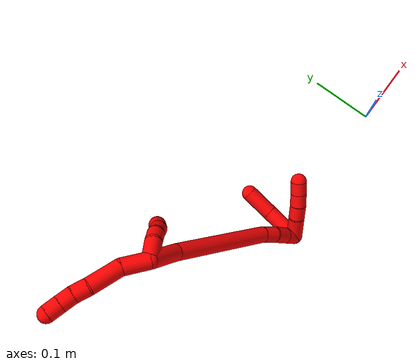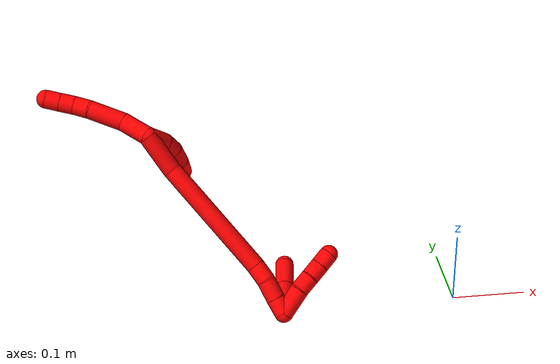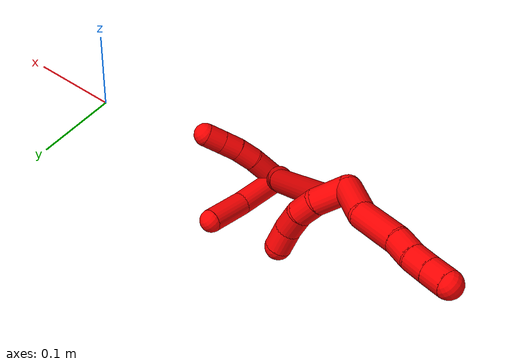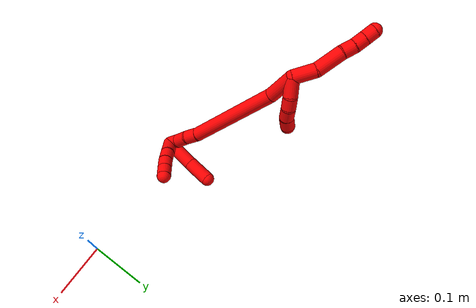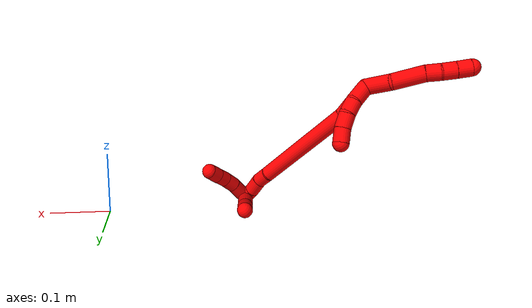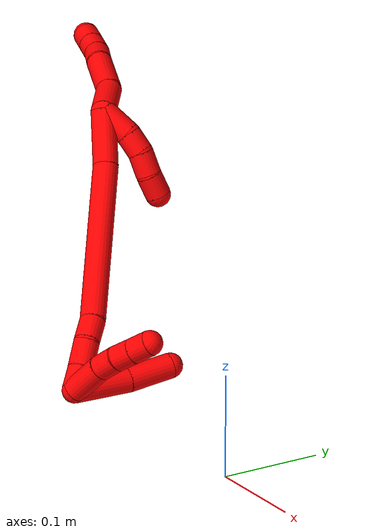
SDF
<sdf version="1.7">
 <world name="default">
  <model name="2">
   <static>0</static>
   <link name="2">
    <collision name="collision-cylinder-e_1_2_8">
     <pose>-9.7e-05 -0.019945 -0.002004 1.67094 -0.00486 -0.005373</pose>
     <geometry><cylinder><radius>0.0125</radius><length>0.040092</length></cylinder></geometry>
     <surface>
      <friction><ode><mu>1.16</mu><mu2>1.16</mu2><slip1>0</slip1><slip2>0</slip2></ode></friction>
      <contact><ode><kp>1e+06</kp><kd>1</kd><max_vel>0</max_vel><min_depth>0.001</min_depth></ode></contact>
     </surface>
    </collision>
    <visual name="visual-cylinder-e_1_2_8">
     <pose>-9.7e-05 -0.019945 -0.002004 1.67094 -0.00486 -0.005373</pose>
     <geometry><cylinder><radius>0.0125</radius><length>0.040092</length></cylinder></geometry>
     <material><ambient>1 0 0 1</ambient></material>
    </visual>
    <collision name="collision-cylinder-e_2_8_9">
     <pose>0.006709 -0.062251 -0.009934 1.82985 0.290047 0.375129</pose>
     <geometry><cylinder><radius>0.0125</radius><length>0.048281</length></cylinder></geometry>
     <surface>
      <friction><ode><mu>1.16</mu><mu2>1.16</mu2><slip1>0</slip1><slip2>0</slip2></ode></friction>
      <contact><ode><kp>1e+06</kp><kd>1</kd><max_vel>0</max_vel><min_depth>0.001</min_depth></ode></contact>
     </surface>
    </collision>
    <visual name="visual-cylinder-e_2_8_9">
     <pose>0.006709 -0.062251 -0.009934 1.82985 0.290047 0.375129</pose>
     <geometry><cylinder><radius>0.0125</radius><length>0.048281</length></cylinder></geometry>
     <material><ambient>1 0 0 1</ambient></material>
    </visual>
    <collision name="collision-cylinder-e_3_9_10">
     <pose>0.014912 -0.094696 -0.019395 1.90802 0.120933 0.170346</pose>
     <geometry><cylinder><radius>0.0125</radius><length>0.021531</length></cylinder></geometry>
     <surface>
      <friction><ode><mu>1.16</mu><mu2>1.16</mu2><slip1>0</slip1><slip2>0</slip2></ode></friction>
      <contact><ode><kp>1e+06</kp><kd>1</kd><max_vel>0</max_vel><min_depth>0.001</min_depth></ode></contact>
     </surface>
    </collision>
    <visual name="visual-cylinder-e_3_9_10">
     <pose>0.014912 -0.094696 -0.019395 1.90802 0.120933 0.170346</pose>
     <geometry><cylinder><radius>0.0125</radius><length>0.021531</length></cylinder></geometry>
     <material><ambient>1 0 0 1</ambient></material>
    </visual>
    <collision name="collision-cylinder-e_4_10_11">
     <pose>0.018845 -0.113642 -0.026755 1.97818 0.266491 0.402147</pose>
     <geometry><cylinder><radius>0.0125</radius><length>0.020006</length></cylinder></geometry>
     <surface>
      <friction><ode><mu>1.16</mu><mu2>1.16</mu2><slip1>0</slip1><slip2>0</slip2></ode></friction>
      <contact><ode><kp>1e+06</kp><kd>1</kd><max_vel>0</max_vel><min_depth>0.001</min_depth></ode></contact>
     </surface>
    </collision>
    <visual name="visual-cylinder-e_4_10_11">
     <pose>0.018845 -0.113642 -0.026755 1.97818 0.266491 0.402147</pose>
     <geometry><cylinder><radius>0.0125</radius><length>0.020006</length></cylinder></geometry>
     <material><ambient>1 0 0 1</ambient></material>
    </visual>
    <collision name="collision-cylinder-e_5_11_6">
     <pose>0.024376 -0.131378 -0.034283 1.96625 0.292504 0.435225</pose>
     <geometry><cylinder><radius>0.0125</radius><length>0.020089</length></cylinder></geometry>
     <surface>
      <friction><ode><mu>1.16</mu><mu2>1.16</mu2><slip1>0</slip1><slip2>0</slip2></ode></friction>
      <contact><ode><kp>1e+06</kp><kd>1</kd><max_vel>0</max_vel><min_depth>0.001</min_depth></ode></contact>
     </surface>
    </collision>
    <visual name="visual-cylinder-e_5_11_6">
     <pose>0.024376 -0.131378 -0.034283 1.96625 0.292504 0.435225</pose>
     <geometry><cylinder><radius>0.0125</radius><length>0.020089</length></cylinder></geometry>
     <material><ambient>1 0 0 1</ambient></material>
    </visual>
    <collision name="collision-cylinder-e_1_2_12">
     <pose>-0.015254 0.006025 0.001389 -1.34414 -1.18571 0.984087</pose>
     <geometry><cylinder><radius>0.0125</radius><length>0.03292</length></cylinder></geometry>
     <surface>
      <friction><ode><mu>1.16</mu><mu2>1.16</mu2><slip1>0</slip1><slip2>0</slip2></ode></friction>
      <contact><ode><kp>1e+06</kp><kd>1</kd><max_vel>0</max_vel><min_depth>0.001</min_depth></ode></contact>
     </surface>
    </collision>
    <visual name="visual-cylinder-e_1_2_12">
     <pose>-0.015254 0.006025 0.001389 -1.34414 -1.18571 0.984087</pose>
     <geometry><cylinder><radius>0.0125</radius><length>0.03292</length></cylinder></geometry>
     <material><ambient>1 0 0 1</ambient></material>
    </visual>
    <collision name="collision-cylinder-e_2_12_13">
     <pose>-0.040067 0.01636 0.000871 -1.98741 -1.11261 1.52492</pose>
     <geometry><cylinder><radius>0.0125</radius><length>0.021314</length></cylinder></geometry>
     <surface>
      <friction><ode><mu>1.16</mu><mu2>1.16</mu2><slip1>0</slip1><slip2>0</slip2></ode></friction>
      <contact><ode><kp>1e+06</kp><kd>1</kd><max_vel>0</max_vel><min_depth>0.001</min_depth></ode></contact>
     </surface>
    </collision>
    <visual name="visual-cylinder-e_2_12_13">
     <pose>-0.040067 0.01636 0.000871 -1.98741 -1.11261 1.52492</pose>
     <geometry><cylinder><radius>0.0125</radius><length>0.021314</length></cylinder></geometry>
     <material><ambient>1 0 0 1</ambient></material>
    </visual>
    <collision name="collision-cylinder-e_3_13_14">
     <pose>-0.058961 0.025286 -0.006088 -2.40129 -0.938333 1.83491</pose>
     <geometry><cylinder><radius>0.0125</radius><length>0.02315</length></cylinder></geometry>
     <surface>
      <friction><ode><mu>1.16</mu><mu2>1.16</mu2><slip1>0</slip1><slip2>0</slip2></ode></friction>
      <contact><ode><kp>1e+06</kp><kd>1</kd><max_vel>0</max_vel><min_depth>0.001</min_depth></ode></contact>
     </surface>
    </collision>
    <visual name="visual-cylinder-e_3_13_14">
     <pose>-0.058961 0.025286 -0.006088 -2.40129 -0.938333 1.83491</pose>
     <geometry><cylinder><radius>0.0125</radius><length>0.02315</length></cylinder></geometry>
     <material><ambient>1 0 0 1</ambient></material>
    </visual>
    <collision name="collision-cylinder-e_4_14_5">
     <pose>-0.078035 0.032022 -0.016482 -2.76373 -1.03756 2.49527</pose>
     <geometry><cylinder><radius>0.0125</radius><length>0.022616</length></cylinder></geometry>
     <surface>
      <friction><ode><mu>1.16</mu><mu2>1.16</mu2><slip1>0</slip1><slip2>0</slip2></ode></friction>
      <contact><ode><kp>1e+06</kp><kd>1</kd><max_vel>0</max_vel><min_depth>0.001</min_depth></ode></contact>
     </surface>
    </collision>
    <visual name="visual-cylinder-e_4_14_5">
     <pose>-0.078035 0.032022 -0.016482 -2.76373 -1.03756 2.49527</pose>
     <geometry><cylinder><radius>0.0125</radius><length>0.022616</length></cylinder></geometry>
     <material><ambient>1 0 0 1</ambient></material>
    </visual>
    <collision name="collision-cylinder-e_1_2_15">
     <pose>-0.013279 0.022299 -0.01025 -2.00167 -0.495946 0.752439</pose>
     <geometry><cylinder><radius>0.0125</radius><length>0.055808</length></cylinder></geometry>
     <surface>
      <friction><ode><mu>1.16</mu><mu2>1.16</mu2><slip1>0</slip1><slip2>0</slip2></ode></friction>
      <contact><ode><kp>1e+06</kp><kd>1</kd><max_vel>0</max_vel><min_depth>0.001</min_depth></ode></contact>
     </surface>
    </collision>
    <visual name="visual-cylinder-e_1_2_15">
     <pose>-0.013279 0.022299 -0.01025 -2.00167 -0.495946 0.752439</pose>
     <geometry><cylinder><radius>0.0125</radius><length>0.055808</length></cylinder></geometry>
     <material><ambient>1 0 0 1</ambient></material>
    </visual>
    <collision name="collision-cylinder-e_2_15_16">
     <pose>-0.051491 0.122843 -0.042236 -1.84175 -0.2979 0.389844</pose>
     <geometry><cylinder><radius>0.0125</radius><length>0.169898</length></cylinder></geometry>
     <surface>
      <friction><ode><mu>1.16</mu><mu2>1.16</mu2><slip1>0</slip1><slip2>0</slip2></ode></friction>
      <contact><ode><kp>1e+06</kp><kd>1</kd><max_vel>0</max_vel><min_depth>0.001</min_depth></ode></contact>
     </surface>
    </collision>
    <visual name="visual-cylinder-e_2_15_16">
     <pose>-0.051491 0.122843 -0.042236 -1.84175 -0.2979 0.389844</pose>
     <geometry><cylinder><radius>0.0125</radius><length>0.169898</length></cylinder></geometry>
     <material><ambient>1 0 0 1</ambient></material>
    </visual>
    <collision name="collision-cylinder-e_3_16_17">
     <pose>-0.078076 0.212364 -0.067836 -1.90096 -0.137639 0.192377</pose>
     <geometry><cylinder><radius>0.0125</radius><length>0.024067</length></cylinder></geometry>
     <surface>
      <friction><ode><mu>1.16</mu><mu2>1.16</mu2><slip1>0</slip1><slip2>0</slip2></ode></friction>
      <contact><ode><kp>1e+06</kp><kd>1</kd><max_vel>0</max_vel><min_depth>0.001</min_depth></ode></contact>
     </surface>
    </collision>
    <visual name="visual-cylinder-e_3_16_17">
     <pose>-0.078076 0.212364 -0.067836 -1.90096 -0.137639 0.192377</pose>
     <geometry><cylinder><radius>0.0125</radius><length>0.024067</length></cylinder></geometry>
     <material><ambient>1 0 0 1</ambient></material>
    </visual>
    <collision name="collision-cylinder-e_4_17_18">
     <pose>-0.08322 0.235111 -0.078212 -2.08707 -0.258859 0.439856</pose>
     <geometry><cylinder><radius>0.0125</radius><length>0.027292</length></cylinder></geometry>
     <surface>
      <friction><ode><mu>1.16</mu><mu2>1.16</mu2><slip1>0</slip1><slip2>0</slip2></ode></friction>
      <contact><ode><kp>1e+06</kp><kd>1</kd><max_vel>0</max_vel><min_depth>0.001</min_depth></ode></contact>
     </surface>
    </collision>
    <visual name="visual-cylinder-e_4_17_18">
     <pose>-0.08322 0.235111 -0.078212 -2.08707 -0.258859 0.439856</pose>
     <geometry><cylinder><radius>0.0125</radius><length>0.027292</length></cylinder></geometry>
     <material><ambient>1 0 0 1</ambient></material>
    </visual>
    <collision name="collision-cylinder-e_5_18_1">
     <pose>-0.08895 0.256692 -0.089655 -2.02463 -0.196391 0.312748</pose>
     <geometry><cylinder><radius>0.0125</radius><length>0.022935</length></cylinder></geometry>
     <surface>
      <friction><ode><mu>1.16</mu><mu2>1.16</mu2><slip1>0</slip1><slip2>0</slip2></ode></friction>
      <contact><ode><kp>1e+06</kp><kd>1</kd><max_vel>0</max_vel><min_depth>0.001</min_depth></ode></contact>
     </surface>
    </collision>
    <visual name="visual-cylinder-e_5_18_1">
     <pose>-0.08895 0.256692 -0.089655 -2.02463 -0.196391 0.312748</pose>
     <geometry><cylinder><radius>0.0125</radius><length>0.022935</length></cylinder></geometry>
     <material><ambient>1 0 0 1</ambient></material>
    </visual>
    <collision name="collision-cylinder-e_1_1_19">
     <pose>-0.092841 0.265963 -0.075521 0.043883 -0.086397 -0.001897</pose>
     <geometry><cylinder><radius>0.0125</radius><length>0.038308</length></cylinder></geometry>
     <surface>
      <friction><ode><mu>1.16</mu><mu2>1.16</mu2><slip1>0</slip1><slip2>0</slip2></ode></friction>
      <contact><ode><kp>1e+06</kp><kd>1</kd><max_vel>0</max_vel><min_depth>0.001</min_depth></ode></contact>
     </surface>
    </collision>
    <visual name="visual-cylinder-e_1_1_19">
     <pose>-0.092841 0.265963 -0.075521 0.043883 -0.086397 -0.001897</pose>
     <geometry><cylinder><radius>0.0125</radius><length>0.038308</length></cylinder></geometry>
     <material><ambient>1 0 0 1</ambient></material>
    </visual>
    <collision name="collision-cylinder-e_2_19_20">
     <pose>-0.096857 0.265551 -0.045907 -0.040233 -0.220186 0.004448</pose>
     <geometry><cylinder><radius>0.0125</radius><length>0.021639</length></cylinder></geometry>
     <surface>
      <friction><ode><mu>1.16</mu><mu2>1.16</mu2><slip1>0</slip1><slip2>0</slip2></ode></friction>
      <contact><ode><kp>1e+06</kp><kd>1</kd><max_vel>0</max_vel><min_depth>0.001</min_depth></ode></contact>
     </surface>
    </collision>
    <visual name="visual-cylinder-e_2_19_20">
     <pose>-0.096857 0.265551 -0.045907 -0.040233 -0.220186 0.004448</pose>
     <geometry><cylinder><radius>0.0125</radius><length>0.021639</length></cylinder></geometry>
     <material><ambient>1 0 0 1</ambient></material>
    </visual>
    <collision name="collision-cylinder-e_3_20_21">
     <pose>-0.102554 0.26597 -0.025906 0.000574 -0.339151 -9.8e-05</pose>
     <geometry><cylinder><radius>0.0125</radius><length>0.020043</length></cylinder></geometry>
     <surface>
      <friction><ode><mu>1.16</mu><mu2>1.16</mu2><slip1>0</slip1><slip2>0</slip2></ode></friction>
      <contact><ode><kp>1e+06</kp><kd>1</kd><max_vel>0</max_vel><min_depth>0.001</min_depth></ode></contact>
     </surface>
    </collision>
    <visual name="visual-cylinder-e_3_20_21">
     <pose>-0.102554 0.26597 -0.025906 0.000574 -0.339151 -9.8e-05</pose>
     <geometry><cylinder><radius>0.0125</radius><length>0.020043</length></cylinder></geometry>
     <material><ambient>1 0 0 1</ambient></material>
    </visual>
    <collision name="collision-cylinder-e_4_21_4">
     <pose>-0.109214 0.265805 -0.007021 0.016878 -0.338924 -0.002888</pose>
     <geometry><cylinder><radius>0.0125</radius><length>0.020009</length></cylinder></geometry>
     <surface>
      <friction><ode><mu>1.16</mu><mu2>1.16</mu2><slip1>0</slip1><slip2>0</slip2></ode></friction>
      <contact><ode><kp>1e+06</kp><kd>1</kd><max_vel>0</max_vel><min_depth>0.001</min_depth></ode></contact>
     </surface>
    </collision>
    <visual name="visual-cylinder-e_4_21_4">
     <pose>-0.109214 0.265805 -0.007021 0.016878 -0.338924 -0.002888</pose>
     <geometry><cylinder><radius>0.0125</radius><length>0.020009</length></cylinder></geometry>
     <material><ambient>1 0 0 1</ambient></material>
    </visual>
    <collision name="collision-cylinder-e_1_1_22">
     <pose>-0.111579 0.251473 -0.083829 0.958881 -0.827948 -0.449145</pose>
     <geometry><cylinder><radius>0.0125</radius><length>0.055368</length></cylinder></geometry>
     <surface>
      <friction><ode><mu>1.16</mu><mu2>1.16</mu2><slip1>0</slip1><slip2>0</slip2></ode></friction>
      <contact><ode><kp>1e+06</kp><kd>1</kd><max_vel>0</max_vel><min_depth>0.001</min_depth></ode></contact>
     </surface>
    </collision>
    <visual name="visual-cylinder-e_1_1_22">
     <pose>-0.111579 0.251473 -0.083829 0.958881 -0.827948 -0.449145</pose>
     <geometry><cylinder><radius>0.0125</radius><length>0.055368</length></cylinder></geometry>
     <material><ambient>1 0 0 1</ambient></material>
    </visual>
    <collision name="collision-cylinder-e_2_22_3">
     <pose>-0.146518 0.222839 -0.06262 0.904902 -0.710162 -0.356646</pose>
     <geometry><cylinder><radius>0.0125</radius><length>0.044632</length></cylinder></geometry>
     <surface>
      <friction><ode><mu>1.16</mu><mu2>1.16</mu2><slip1>0</slip1><slip2>0</slip2></ode></friction>
      <contact><ode><kp>1e+06</kp><kd>1</kd><max_vel>0</max_vel><min_depth>0.001</min_depth></ode></contact>
     </surface>
    </collision>
    <visual name="visual-cylinder-e_2_22_3">
     <pose>-0.146518 0.222839 -0.06262 0.904902 -0.710162 -0.356646</pose>
     <geometry><cylinder><radius>0.0125</radius><length>0.044632</length></cylinder></geometry>
     <material><ambient>1 0 0 1</ambient></material>
    </visual>
    <collision name="collision-sphere-3">
     <pose>-0.161067 0.209533 -0.052166 0 -0 0</pose>
     <geometry><sphere><radius>0.0125</radius></sphere></geometry>
     <surface>
      <friction><ode><mu>1.16</mu><mu2>1.16</mu2><slip1>0</slip1><slip2>0</slip2></ode></friction>
      <contact><ode><kp>1e+06</kp><kd>1</kd><max_vel>0</max_vel><min_depth>0.001</min_depth></ode></contact>
     </surface>
    </collision>
    <visual name="visual-sphere-3">
     <pose>-0.161067 0.209533 -0.052166 0 -0 0</pose>
     <geometry><sphere><radius>0.0125</radius></sphere></geometry>
     <material><ambient>1 0 0 1</ambient></material>
    </visual>
    <collision name="collision-sphere-22">
     <pose>-0.131969 0.236145 -0.073073 0 -0 0</pose>
     <geometry><sphere><radius>0.0125</radius></sphere></geometry>
     <surface>
      <friction><ode><mu>1.16</mu><mu2>1.16</mu2><slip1>0</slip1><slip2>0</slip2></ode></friction>
      <contact><ode><kp>1e+06</kp><kd>1</kd><max_vel>0</max_vel><min_depth>0.001</min_depth></ode></contact>
     </surface>
    </collision>
    <visual name="visual-sphere-22">
     <pose>-0.131969 0.236145 -0.073073 0 -0 0</pose>
     <geometry><sphere><radius>0.0125</radius></sphere></geometry>
     <material><ambient>1 0 0 1</ambient></material>
    </visual>
    <collision name="collision-sphere-4">
     <pose>-0.11254 0.265646 0.002412 0 -0 0</pose>
     <geometry><sphere><radius>0.0125</radius></sphere></geometry>
     <surface>
      <friction><ode><mu>1.16</mu><mu2>1.16</mu2><slip1>0</slip1><slip2>0</slip2></ode></friction>
      <contact><ode><kp>1e+06</kp><kd>1</kd><max_vel>0</max_vel><min_depth>0.001</min_depth></ode></contact>
     </surface>
    </collision>
    <visual name="visual-sphere-4">
     <pose>-0.11254 0.265646 0.002412 0 -0 0</pose>
     <geometry><sphere><radius>0.0125</radius></sphere></geometry>
     <material><ambient>1 0 0 1</ambient></material>
    </visual>
    <collision name="collision-sphere-21">
     <pose>-0.105888 0.265964 -0.016455 0 -0 0</pose>
     <geometry><sphere><radius>0.0125</radius></sphere></geometry>
     <surface>
      <friction><ode><mu>1.16</mu><mu2>1.16</mu2><slip1>0</slip1><slip2>0</slip2></ode></friction>
      <contact><ode><kp>1e+06</kp><kd>1</kd><max_vel>0</max_vel><min_depth>0.001</min_depth></ode></contact>
     </surface>
    </collision>
    <visual name="visual-sphere-21">
     <pose>-0.105888 0.265964 -0.016455 0 -0 0</pose>
     <geometry><sphere><radius>0.0125</radius></sphere></geometry>
     <material><ambient>1 0 0 1</ambient></material>
    </visual>
    <collision name="collision-sphere-20">
     <pose>-0.09922 0.265975 -0.035357 0 -0 0</pose>
     <geometry><sphere><radius>0.0125</radius></sphere></geometry>
     <surface>
      <friction><ode><mu>1.16</mu><mu2>1.16</mu2><slip1>0</slip1><slip2>0</slip2></ode></friction>
      <contact><ode><kp>1e+06</kp><kd>1</kd><max_vel>0</max_vel><min_depth>0.001</min_depth></ode></contact>
     </surface>
    </collision>
    <visual name="visual-sphere-20">
     <pose>-0.09922 0.265975 -0.035357 0 -0 0</pose>
     <geometry><sphere><radius>0.0125</radius></sphere></geometry>
     <material><ambient>1 0 0 1</ambient></material>
    </visual>
    <collision name="collision-sphere-6">
     <pose>0.027272 -0.140254 -0.037989 0 -0 0</pose>
     <geometry><sphere><radius>0.0125</radius></sphere></geometry>
     <surface>
      <friction><ode><mu>1.16</mu><mu2>1.16</mu2><slip1>0</slip1><slip2>0</slip2></ode></friction>
      <contact><ode><kp>1e+06</kp><kd>1</kd><max_vel>0</max_vel><min_depth>0.001</min_depth></ode></contact>
     </surface>
    </collision>
    <visual name="visual-sphere-6">
     <pose>0.027272 -0.140254 -0.037989 0 -0 0</pose>
     <geometry><sphere><radius>0.0125</radius></sphere></geometry>
     <material><ambient>1 0 0 1</ambient></material>
    </visual>
    <collision name="collision-sphere-11">
     <pose>0.021479 -0.122502 -0.030578 0 -0 0</pose>
     <geometry><sphere><radius>0.0125</radius></sphere></geometry>
     <surface>
      <friction><ode><mu>1.16</mu><mu2>1.16</mu2><slip1>0</slip1><slip2>0</slip2></ode></friction>
      <contact><ode><kp>1e+06</kp><kd>1</kd><max_vel>0</max_vel><min_depth>0.001</min_depth></ode></contact>
     </surface>
    </collision>
    <visual name="visual-sphere-11">
     <pose>0.021479 -0.122502 -0.030578 0 -0 0</pose>
     <geometry><sphere><radius>0.0125</radius></sphere></geometry>
     <material><ambient>1 0 0 1</ambient></material>
    </visual>
    <collision name="collision-sphere-10">
     <pose>0.016211 -0.104781 -0.022931 0 -0 0</pose>
     <geometry><sphere><radius>0.0125</radius></sphere></geometry>
     <surface>
      <friction><ode><mu>1.16</mu><mu2>1.16</mu2><slip1>0</slip1><slip2>0</slip2></ode></friction>
      <contact><ode><kp>1e+06</kp><kd>1</kd><max_vel>0</max_vel><min_depth>0.001</min_depth></ode></contact>
     </surface>
    </collision>
    <visual name="visual-sphere-10">
     <pose>0.016211 -0.104781 -0.022931 0 -0 0</pose>
     <geometry><sphere><radius>0.0125</radius></sphere></geometry>
     <material><ambient>1 0 0 1</ambient></material>
    </visual>
    <collision name="collision-sphere-9">
     <pose>0.013613 -0.084611 -0.015859 0 -0 0</pose>
     <geometry><sphere><radius>0.0125</radius></sphere></geometry>
     <surface>
      <friction><ode><mu>1.16</mu><mu2>1.16</mu2><slip1>0</slip1><slip2>0</slip2></ode></friction>
      <contact><ode><kp>1e+06</kp><kd>1</kd><max_vel>0</max_vel><min_depth>0.001</min_depth></ode></contact>
     </surface>
    </collision>
    <visual name="visual-sphere-9">
     <pose>0.013613 -0.084611 -0.015859 0 -0 0</pose>
     <geometry><sphere><radius>0.0125</radius></sphere></geometry>
     <material><ambient>1 0 0 1</ambient></material>
    </visual>
    <collision name="collision-sphere-2">
     <geometry><sphere><radius>0.0125</radius></sphere></geometry>
     <surface>
      <friction><ode><mu>1.16</mu><mu2>1.16</mu2><slip1>0</slip1><slip2>0</slip2></ode></friction>
      <contact><ode><kp>1e+06</kp><kd>1</kd><max_vel>0</max_vel><min_depth>0.001</min_depth></ode></contact>
     </surface>
    </collision>
    <visual name="visual-sphere-2">
     <geometry><sphere><radius>0.0125</radius></sphere></geometry>
     <material><ambient>1 0 0 1</ambient></material>
    </visual>
    <collision name="collision-sphere-19">
     <pose>-0.094494 0.265126 -0.056457 0 -0 0</pose>
     <geometry><sphere><radius>0.0125</radius></sphere></geometry>
     <surface>
      <friction><ode><mu>1.16</mu><mu2>1.16</mu2><slip1>0</slip1><slip2>0</slip2></ode></friction>
      <contact><ode><kp>1e+06</kp><kd>1</kd><max_vel>0</max_vel><min_depth>0.001</min_depth></ode></contact>
     </surface>
    </collision>
    <visual name="visual-sphere-19">
     <pose>-0.094494 0.265126 -0.056457 0 -0 0</pose>
     <geometry><sphere><radius>0.0125</radius></sphere></geometry>
     <material><ambient>1 0 0 1</ambient></material>
    </visual>
    <collision name="collision-sphere-8">
     <pose>-0.000195 -0.039891 -0.004008 0 -0 0</pose>
     <geometry><sphere><radius>0.0125</radius></sphere></geometry>
     <surface>
      <friction><ode><mu>1.16</mu><mu2>1.16</mu2><slip1>0</slip1><slip2>0</slip2></ode></friction>
      <contact><ode><kp>1e+06</kp><kd>1</kd><max_vel>0</max_vel><min_depth>0.001</min_depth></ode></contact>
     </surface>
    </collision>
    <visual name="visual-sphere-8">
     <pose>-0.000195 -0.039891 -0.004008 0 -0 0</pose>
     <geometry><sphere><radius>0.0125</radius></sphere></geometry>
     <material><ambient>1 0 0 1</ambient></material>
    </visual>
    <collision name="collision-sphere-12">
     <pose>-0.030509 0.01205 0.002779 0 -0 0</pose>
     <geometry><sphere><radius>0.0125</radius></sphere></geometry>
     <surface>
      <friction><ode><mu>1.16</mu><mu2>1.16</mu2><slip1>0</slip1><slip2>0</slip2></ode></friction>
      <contact><ode><kp>1e+06</kp><kd>1</kd><max_vel>0</max_vel><min_depth>0.001</min_depth></ode></contact>
     </surface>
    </collision>
    <visual name="visual-sphere-12">
     <pose>-0.030509 0.01205 0.002779 0 -0 0</pose>
     <geometry><sphere><radius>0.0125</radius></sphere></geometry>
     <material><ambient>1 0 0 1</ambient></material>
    </visual>
    <collision name="collision-sphere-13">
     <pose>-0.049625 0.020671 -0.001036 0 -0 0</pose>
     <geometry><sphere><radius>0.0125</radius></sphere></geometry>
     <surface>
      <friction><ode><mu>1.16</mu><mu2>1.16</mu2><slip1>0</slip1><slip2>0</slip2></ode></friction>
      <contact><ode><kp>1e+06</kp><kd>1</kd><max_vel>0</max_vel><min_depth>0.001</min_depth></ode></contact>
     </surface>
    </collision>
    <visual name="visual-sphere-13">
     <pose>-0.049625 0.020671 -0.001036 0 -0 0</pose>
     <geometry><sphere><radius>0.0125</radius></sphere></geometry>
     <material><ambient>1 0 0 1</ambient></material>
    </visual>
    <collision name="collision-sphere-14">
     <pose>-0.068297 0.029902 -0.011139 0 -0 0</pose>
     <geometry><sphere><radius>0.0125</radius></sphere></geometry>
     <surface>
      <friction><ode><mu>1.16</mu><mu2>1.16</mu2><slip1>0</slip1><slip2>0</slip2></ode></friction>
      <contact><ode><kp>1e+06</kp><kd>1</kd><max_vel>0</max_vel><min_depth>0.001</min_depth></ode></contact>
     </surface>
    </collision>
    <visual name="visual-sphere-14">
     <pose>-0.068297 0.029902 -0.011139 0 -0 0</pose>
     <geometry><sphere><radius>0.0125</radius></sphere></geometry>
     <material><ambient>1 0 0 1</ambient></material>
    </visual>
    <collision name="collision-sphere-5">
     <pose>-0.087773 0.034143 -0.021824 0 -0 0</pose>
     <geometry><sphere><radius>0.0125</radius></sphere></geometry>
     <surface>
      <friction><ode><mu>1.16</mu><mu2>1.16</mu2><slip1>0</slip1><slip2>0</slip2></ode></friction>
      <contact><ode><kp>1e+06</kp><kd>1</kd><max_vel>0</max_vel><min_depth>0.001</min_depth></ode></contact>
     </surface>
    </collision>
    <visual name="visual-sphere-5">
     <pose>-0.087773 0.034143 -0.021824 0 -0 0</pose>
     <geometry><sphere><radius>0.0125</radius></sphere></geometry>
     <material><ambient>1 0 0 1</ambient></material>
    </visual>
    <collision name="collision-sphere-15">
     <pose>-0.026557 0.044598 -0.020501 0 -0 0</pose>
     <geometry><sphere><radius>0.0125</radius></sphere></geometry>
     <surface>
      <friction><ode><mu>1.16</mu><mu2>1.16</mu2><slip1>0</slip1><slip2>0</slip2></ode></friction>
      <contact><ode><kp>1e+06</kp><kd>1</kd><max_vel>0</max_vel><min_depth>0.001</min_depth></ode></contact>
     </surface>
    </collision>
    <visual name="visual-sphere-15">
     <pose>-0.026557 0.044598 -0.020501 0 -0 0</pose>
     <geometry><sphere><radius>0.0125</radius></sphere></geometry>
     <material><ambient>1 0 0 1</ambient></material>
    </visual>
    <collision name="collision-sphere-16">
     <pose>-0.076425 0.201088 -0.063972 0 -0 0</pose>
     <geometry><sphere><radius>0.0125</radius></sphere></geometry>
     <surface>
      <friction><ode><mu>1.16</mu><mu2>1.16</mu2><slip1>0</slip1><slip2>0</slip2></ode></friction>
      <contact><ode><kp>1e+06</kp><kd>1</kd><max_vel>0</max_vel><min_depth>0.001</min_depth></ode></contact>
     </surface>
    </collision>
    <visual name="visual-sphere-16">
     <pose>-0.076425 0.201088 -0.063972 0 -0 0</pose>
     <geometry><sphere><radius>0.0125</radius></sphere></geometry>
     <material><ambient>1 0 0 1</ambient></material>
    </visual>
    <collision name="collision-sphere-17">
     <pose>-0.079727 0.22364 -0.071701 0 -0 0</pose>
     <geometry><sphere><radius>0.0125</radius></sphere></geometry>
     <surface>
      <friction><ode><mu>1.16</mu><mu2>1.16</mu2><slip1>0</slip1><slip2>0</slip2></ode></friction>
      <contact><ode><kp>1e+06</kp><kd>1</kd><max_vel>0</max_vel><min_depth>0.001</min_depth></ode></contact>
     </surface>
    </collision>
    <visual name="visual-sphere-17">
     <pose>-0.079727 0.22364 -0.071701 0 -0 0</pose>
     <geometry><sphere><radius>0.0125</radius></sphere></geometry>
     <material><ambient>1 0 0 1</ambient></material>
    </visual>
    <collision name="collision-sphere-18">
     <pose>-0.086713 0.246583 -0.084724 0 -0 0</pose>
     <geometry><sphere><radius>0.0125</radius></sphere></geometry>
     <surface>
      <friction><ode><mu>1.16</mu><mu2>1.16</mu2><slip1>0</slip1><slip2>0</slip2></ode></friction>
      <contact><ode><kp>1e+06</kp><kd>1</kd><max_vel>0</max_vel><min_depth>0.001</min_depth></ode></contact>
     </surface>
    </collision>
    <visual name="visual-sphere-18">
     <pose>-0.086713 0.246583 -0.084724 0 -0 0</pose>
     <geometry><sphere><radius>0.0125</radius></sphere></geometry>
     <material><ambient>1 0 0 1</ambient></material>
    </visual>
    <collision name="collision-sphere-1">
     <pose>-0.091188 0.2668 -0.094586 0 -0 0</pose>
     <geometry><sphere><radius>0.0125</radius></sphere></geometry>
     <surface>
      <friction><ode><mu>1.16</mu><mu2>1.16</mu2><slip1>0</slip1><slip2>0</slip2></ode></friction>
      <contact><ode><kp>1e+06</kp><kd>1</kd><max_vel>0</max_vel><min_depth>0.001</min_depth></ode></contact>
     </surface>
    </collision>
    <visual name="visual-sphere-1">
     <pose>-0.091188 0.2668 -0.094586 0 -0 0</pose>
     <geometry><sphere><radius>0.0125</radius></sphere></geometry>
     <material><ambient>1 0 0 1</ambient></material>
    </visual>
    <inertial>
     <pose>-0.055024 0.108111 -0.037606 0 -0 0</pose>
     <mass>0.75</mass>
     <inertia>
      <ixx>0.000578</ixx>
      <ixy>0</ixy>
      <ixz>0</ixz>
      <iyy>0.000147</iyy>
      <iyz>0</iyz>
      <izz>-0.000215</izz>
     </inertia>
    </inertial>
   </link>
   <pose>-0.399405 0.116206 0.220309 -0.402836 -0.623016 -2.07904</pose>
  </model>
 </world>
</sdf>
